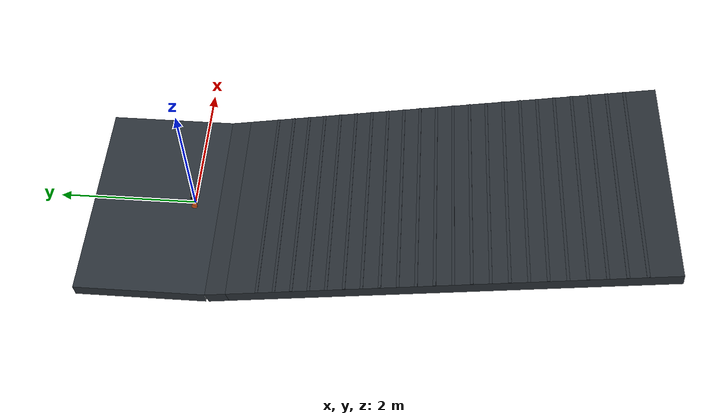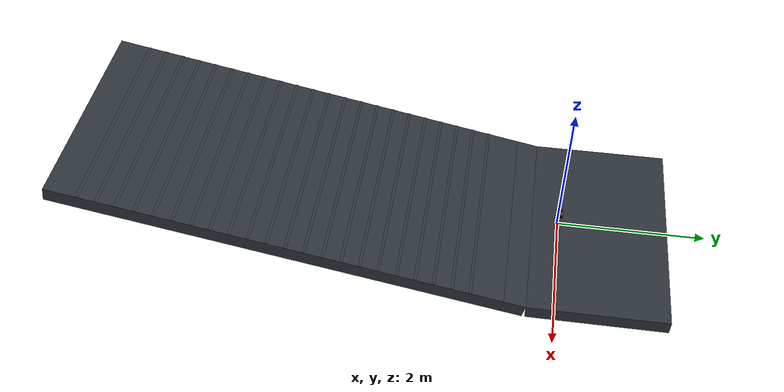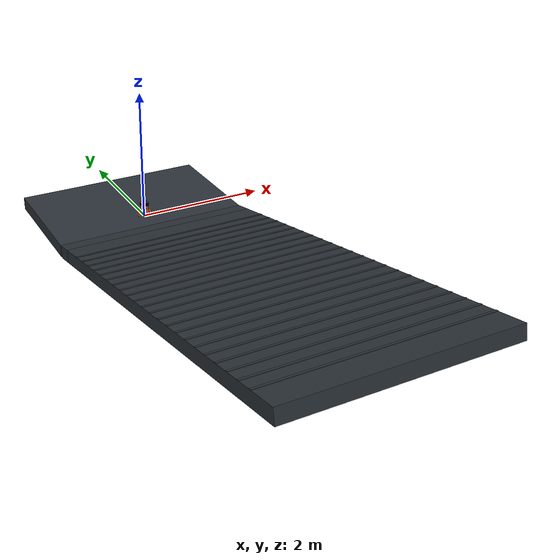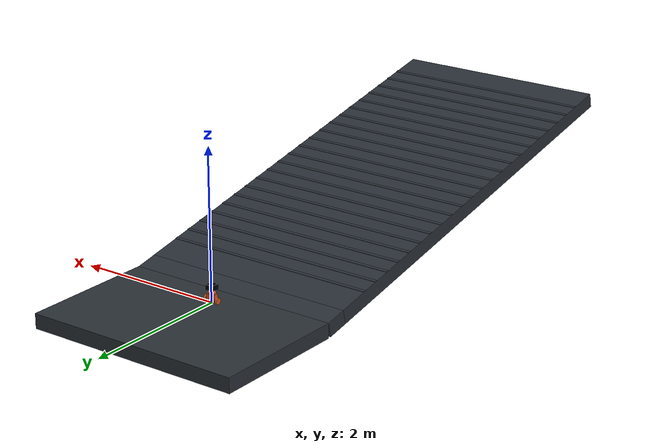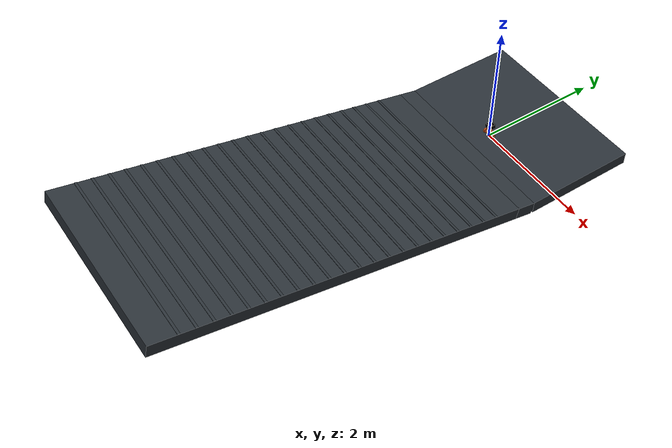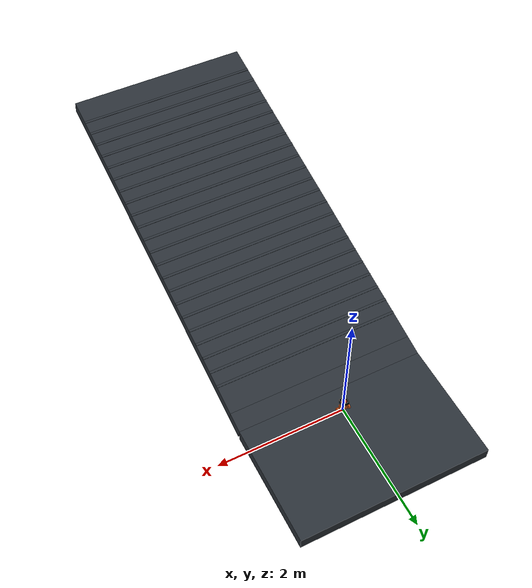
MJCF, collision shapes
<mujoco model="Stage4B rtrain_049_p12p0">
  <compiler angle="radian" meshdir="../../../../assets/upstream_local" />
  <option timestep="0.001" integrator="implicitfast" gravity="0 0 -9.81" />
  <statistic center="0 0 0.10" extent="0.35" />
  <default>
    <default class="visual">
      <geom contype="0" conaffinity="0" group="2" />
    </default>
    <default class="collision">
      <geom group="3" rgba="0.85 0.35 0.12 0.25" solref="0.005 1" solimp="0.9 0.95 0.001" />
    </default>
  </default>
  <asset>
    <texture name="ground_tex" type="2d" builtin="checker" rgb1="0.22 0.25 0.28" rgb2="0.12 0.14 0.16" width="256" height="256" />
    <material name="ground_mat" texture="ground_tex" texrepeat="4 4" reflectance="0.15" />
    <mesh name="main_frame_mesh" file="main_frame.stl" scale="0.001 0.001 0.001" />
    <mesh name="wheel_base_mesh" file="wheel_base.stl" scale="0.001 0.001 0.001" />
    <mesh name="cover_mesh" file="cover.stl" scale="0.001 0.001 0.001" />
    <mesh name="motor_left_mesh" file="motor_left.stl" scale="0.001 0.001 0.001" />
    <mesh name="motor_right_mesh" file="motor_right.stl" scale="0.001 0.001 0.001" />
    <mesh name="mc33926_mesh" file="mc33926.stl" scale="0.001 0.001 0.001" />
    <mesh name="wheel_mesh" file="wheel.stl" scale="0.001 0.001 0.001" />
    <mesh name="adapter_left_mesh" file="adapter_left.stl" scale="0.001 0.001 0.001" />
    <mesh name="adapter_right_mesh" file="adapter_right.stl" scale="0.001 0.001 0.001" />
  </asset>
  <worldbody>
    <light pos="0 -0.5 0.8" dir="0 0.6 -1" diffuse="0.8 0.8 0.8" />
    <geom name="terrain_flat" type="box" pos="0 0.575 -0.1" size="1.5 0.925 0.1" material="ground_mat" friction="0.092922699 0.005 0.0001" condim="3" />
    <geom name="terrain_transition" type="box" pos="0 -0.517513309192 -0.0666280064507" euler="-0.209439510239 0 0" size="1.5 0.15 0.1" material="ground_mat" friction="0.092922699 0.005 0.0001" condim="3" />
    <geom name="terrain_constant_grade" type="box" pos="0 -3.5986782515 0.588293819625" euler="-0.209439510239 0 0" size="1.5 3 0.1" material="ground_mat" friction="0.092922699 0.005 0.0001" condim="3" />
    <geom name="terrain_rough_00" type="box" pos="0 -1.08297352648 0.15893143642" euler="-0.209439510239 0 0" size="1.5 0.0199162827187 0.00306463799999" material="ground_mat" friction="0.092922699 0.005 0.0001" condim="3" />
    <geom name="terrain_rough_01" type="box" pos="0 -1.32148901009 0.20962946752" euler="-0.209439510239 0 0" size="1.5 0.0199162827187 0.00306463799999" material="ground_mat" friction="0.092922699 0.005 0.0001" condim="3" />
    <geom name="terrain_rough_02" type="box" pos="0 -1.56000449369 0.26032749862" euler="-0.209439510239 0 0" size="1.5 0.0199162827187 0.00306463799999" material="ground_mat" friction="0.092922699 0.005 0.0001" condim="3" />
    <geom name="terrain_rough_03" type="box" pos="0 -1.79851997729 0.31102552972" euler="-0.209439510239 0 0" size="1.5 0.0199162827187 0.00306463799999" material="ground_mat" friction="0.092922699 0.005 0.0001" condim="3" />
    <geom name="terrain_rough_04" type="box" pos="0 -2.0370354609 0.361723560819" euler="-0.209439510239 0 0" size="1.5 0.0199162827187 0.00306463799999" material="ground_mat" friction="0.092922699 0.005 0.0001" condim="3" />
    <geom name="terrain_rough_05" type="box" pos="0 -2.2755509445 0.412421591919" euler="-0.209439510239 0 0" size="1.5 0.0199162827187 0.00306463799999" material="ground_mat" friction="0.092922699 0.005 0.0001" condim="3" />
    <geom name="terrain_rough_06" type="box" pos="0 -2.5140664281 0.463119623019" euler="-0.209439510239 0 0" size="1.5 0.0199162827187 0.00306463799999" material="ground_mat" friction="0.092922699 0.005 0.0001" condim="3" />
    <geom name="terrain_rough_07" type="box" pos="0 -2.75258191171 0.513817654119" euler="-0.209439510239 0 0" size="1.5 0.0199162827187 0.00306463799999" material="ground_mat" friction="0.092922699 0.005 0.0001" condim="3" />
    <geom name="terrain_rough_08" type="box" pos="0 -2.99109739531 0.564515685219" euler="-0.209439510239 0 0" size="1.5 0.0199162827187 0.00306463799999" material="ground_mat" friction="0.092922699 0.005 0.0001" condim="3" />
    <geom name="terrain_rough_09" type="box" pos="0 -3.22961287891 0.615213716319" euler="-0.209439510239 0 0" size="1.5 0.0199162827187 0.00306463799999" material="ground_mat" friction="0.092922699 0.005 0.0001" condim="3" />
    <geom name="terrain_rough_10" type="box" pos="0 -3.46812836252 0.665911747418" euler="-0.209439510239 0 0" size="1.5 0.0199162827187 0.00306463799999" material="ground_mat" friction="0.092922699 0.005 0.0001" condim="3" />
    <geom name="terrain_rough_11" type="box" pos="0 -3.70664384612 0.716609778518" euler="-0.209439510239 0 0" size="1.5 0.0199162827187 0.00306463799999" material="ground_mat" friction="0.092922699 0.005 0.0001" condim="3" />
    <geom name="terrain_rough_12" type="box" pos="0 -3.94515932972 0.767307809618" euler="-0.209439510239 0 0" size="1.5 0.0199162827187 0.00306463799999" material="ground_mat" friction="0.092922699 0.005 0.0001" condim="3" />
    <geom name="terrain_rough_13" type="box" pos="0 -4.18367481333 0.818005840718" euler="-0.209439510239 0 0" size="1.5 0.0199162827187 0.00306463799999" material="ground_mat" friction="0.092922699 0.005 0.0001" condim="3" />
    <geom name="terrain_rough_14" type="box" pos="0 -4.42219029693 0.868703871818" euler="-0.209439510239 0 0" size="1.5 0.0199162827187 0.00306463799999" material="ground_mat" friction="0.092922699 0.005 0.0001" condim="3" />
    <geom name="terrain_rough_15" type="box" pos="0 -4.66070578054 0.919401902918" euler="-0.209439510239 0 0" size="1.5 0.0199162827187 0.00306463799999" material="ground_mat" friction="0.092922699 0.005 0.0001" condim="3" />
    <geom name="terrain_rough_16" type="box" pos="0 -4.89922126414 0.970099934017" euler="-0.209439510239 0 0" size="1.5 0.0199162827187 0.00306463799999" material="ground_mat" friction="0.092922699 0.005 0.0001" condim="3" />
    <geom name="terrain_rough_17" type="box" pos="0 -5.13773674774 1.02079796512" euler="-0.209439510239 0 0" size="1.5 0.0199162827187 0.00306463799999" material="ground_mat" friction="0.092922699 0.005 0.0001" condim="3" />
    <geom name="terrain_rough_18" type="box" pos="0 -5.37625223135 1.07149599622" euler="-0.209439510239 0 0" size="1.5 0.0199162827187 0.00306463799999" material="ground_mat" friction="0.092922699 0.005 0.0001" condim="3" />
    <geom name="terrain_rough_19" type="box" pos="0 -5.61476771495 1.12219402732" euler="-0.209439510239 0 0" size="1.5 0.0199162827187 0.00306463799999" material="ground_mat" friction="0.092922699 0.005 0.0001" condim="3" />
    <geom name="terrain_rough_20" type="box" pos="0 -5.85328319855 1.17289205842" euler="-0.209439510239 0 0" size="1.5 0.0199162827187 0.00306463799999" material="ground_mat" friction="0.092922699 0.005 0.0001" condim="3" />
    <geom name="terrain_rough_21" type="box" pos="0 -6.09179868216 1.22359008952" euler="-0.209439510239 0 0" size="1.5 0.0199162827187 0.00306463799999" material="ground_mat" friction="0.092922699 0.005 0.0001" condim="3" />
    <body name="chassis" pos="0 0 0.043">
      <freejoint name="root" />
      <inertial pos="0.0001592717873 -0.001394466535 0.03368627387" mass="0.8173706489" fullinertia="0.0009508052638 0.001636345835 0.0009938057434 -1.163464906e-07 -4.840496598e-06 3.454944565e-05" />
      <geom name="main_frame_visual" class="visual" type="mesh" mesh="main_frame_mesh" rgba="0.12 0.42 0.72 1" />
      <geom name="wheel_base_visual" class="visual" type="mesh" mesh="wheel_base_mesh" rgba="0.95 0.50 0.10 1" />
      <geom name="cover_visual" class="visual" type="mesh" mesh="cover_mesh" rgba="0.18 0.72 0.32 0.72" />
      <geom name="motor_left_visual" class="visual" type="mesh" mesh="motor_left_mesh" rgba="0.45 0.47 0.50 1" />
      <geom name="motor_right_visual" class="visual" type="mesh" mesh="motor_right_mesh" rgba="0.45 0.47 0.50 1" />
      <geom name="mc33926_visual" class="visual" type="mesh" mesh="mc33926_mesh" rgba="0.08 0.36 0.18 1" />
      <geom name="battery_1_visual" class="visual" type="box" pos="0 -0.012 0.038" size="0.035 0.007 0.025" rgba="0.15 0.25 0.75 1" />
      <geom name="battery_2_visual" class="visual" type="box" pos="0 0.012 0.038" size="0.035 0.007 0.025" rgba="0.15 0.25 0.75 1" />
      <geom name="electronics_lump_visual" class="visual" type="box" pos="0 -0.024 0.067" size="0.035 0.006 0.0425" rgba="0.10 0.42 0.20 0.65" />
      <geom name="wheel_base_collision" class="collision" type="box" pos="0 0.0005 0.0042" size="0.074 0.0201 0.0198" />
      <geom name="lower_chassis_collision" class="collision" type="box" pos="0.001 -0.0015 0.038" size="0.0595 0.0325 0.038" />
      <geom name="upper_chassis_collision" class="collision" type="capsule" fromto="-0.024 -0.0015 0.096 0.026 -0.0015 0.096" size="0.033" />
      <geom name="basket_floor" class="collision" type="box" pos="0 0 0.137" size="0.055 0.052 0.003" friction="0.024 0.005 0.0001" rgba="0.18 0.30 0.48 0.65" />
      <geom name="basket_front_wall" class="collision" type="box" pos="0 -0.052 0.170" size="0.055 0.003 0.033" friction="0.024 0.005 0.0001" rgba="0 0 0 0" />
      <geom name="basket_rear_wall" class="collision" type="box" pos="0 0.052 0.170" size="0.055 0.003 0.033" friction="0.024 0.005 0.0001" rgba="0 0 0 0" />
      <geom name="basket_left_wall" class="collision" type="box" pos="-0.055 0 0.170" size="0.003 0.052 0.033" friction="0.024 0.005 0.0001" rgba="0 0 0 0" />
      <geom name="basket_right_wall" class="collision" type="box" pos="0.055 0 0.170" size="0.003 0.052 0.033" friction="0.024 0.005 0.0001" rgba="0 0 0 0" />
      <site name="imu_site" type="box" pos="0 0 0.020" quat="1 0 0 0" size="0.004 0.003 0.001" rgba="1 0.15 0.05 1" />
      <body name="left_wheel" pos="-0.0885 0 0">
        <joint name="left_wheel_hinge" type="hinge" axis="1 0 0" damping="0.002" frictionloss="0.002" />
        <inertial pos="0.001407549168 -2.310217342e-08 4.024972882e-05" mass="0.1051" fullinertia="8.559060347e-05 4.760138372e-05 4.763051958e-05 2.677568832e-11 -3.525425309e-08 -1.463149106e-11" />
        <geom name="left_wheel_visual" class="visual" type="mesh" mesh="wheel_mesh" rgba="0.04 0.05 0.06 1" />
        <geom name="left_adapter_visual" class="visual" type="mesh" mesh="adapter_left_mesh" rgba="0.12 0.48 0.82 1" />
        <geom name="left_wheel_collision" class="collision" type="cylinder" size="0.042 0.012" quat="0.7071067812 0 0.7071067812 0" friction="0.092922699 0.005 0.0001" />
      </body>
      <body name="right_wheel" pos="0.0885 0 0">
        <joint name="right_wheel_hinge" type="hinge" axis="1 0 0" damping="0.002" frictionloss="0.002" />
        <inertial pos="-0.001407437868 -2.310217342e-08 -4.019113045e-05" mass="0.1051" fullinertia="8.559060397e-05 4.760141714e-05 4.763055251e-05 -2.601653908e-11 -3.526339188e-08 1.57007511e-11" />
        <geom name="right_wheel_visual" class="visual" type="mesh" mesh="wheel_mesh" rgba="0.04 0.05 0.06 1" />
        <geom name="right_adapter_visual" class="visual" type="mesh" mesh="adapter_right_mesh" rgba="0.12 0.48 0.82 1" />
        <geom name="right_wheel_collision" class="collision" type="cylinder" size="0.042 0.012" quat="0.7071067812 0 0.7071067812 0" friction="0.092922699 0.005 0.0001" />
      </body>
    </body>
    <body name="moving_payload" pos="0 0 0.204">
      <freejoint name="moving_payload_free" />
      <inertial pos="0 0 0" mass="0.20" diaginertia="0.0000533333333 0.0001333333333 0.0001333333333" />
      <geom name="moving_payload_collision" class="collision" type="box" size="0.040 0.020 0.020" friction="0.024 0.005 0.0001" rgba="0.78 0.18 0.12 1" />
    </body>
  </worldbody>
  <actuator>
    <motor name="left_wheel_torque" joint="left_wheel_hinge" gear="1" ctrllimited="true" ctrlrange="-0.63 0.63" forcelimited="true" forcerange="-0.63 0.63" />
    <motor name="right_wheel_torque" joint="right_wheel_hinge" gear="1" ctrllimited="true" ctrlrange="-0.63 0.63" forcelimited="true" forcerange="-0.63 0.63" />
  </actuator>
  <sensor>
    <accelerometer name="imu_accelerometer" site="imu_site" />
    <gyro name="imu_gyro" site="imu_site" />
    <jointpos name="left_wheel_angle" joint="left_wheel_hinge" />
    <jointpos name="right_wheel_angle" joint="right_wheel_hinge" />
  </sensor>
  <keyframe>
    <key name="upright" qpos="0 0 0.043 1 0 0 0 0 0 0 0 0.204 1 0 0 0" />
  </keyframe>
</mujoco>
